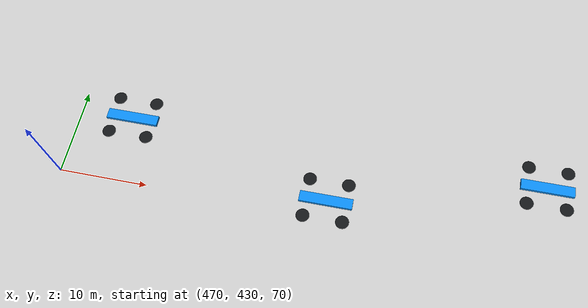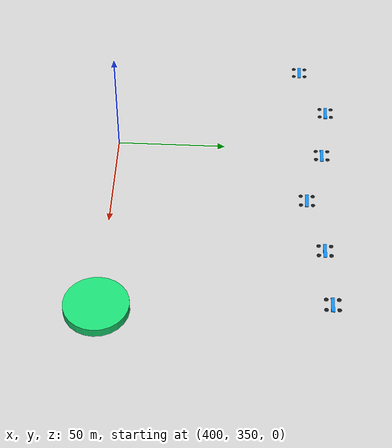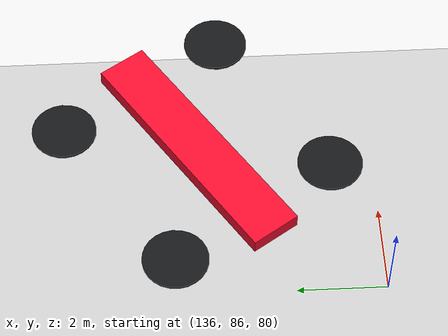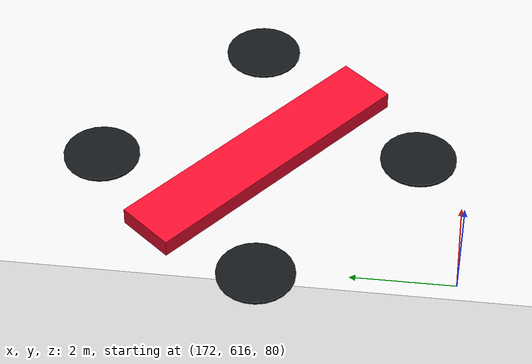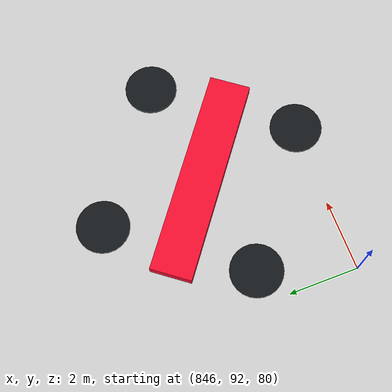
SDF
<?xml version="1.0" ?>
<sdf version="1.6">
  <world name="aegis_baseline">
    <gravity>0 0 -9.8</gravity>
    <magnetic_field>6e-06 2.3e-05 -4.2e-05</magnetic_field>
    <include>
      <uri>model://sun</uri>
    </include>
    <include>
      <uri>model://ground_plane</uri>
    </include>
    <scene>
      <ambient>0.38 0.42 0.46 1</ambient>
      <background>0.025 0.032 0.04 1</background>
      <shadows>true</shadows>
    </scene>
    <model name="asset-alpha">
      <pose>500.0 350.0 0 0 0 0</pose>
      <static>true</static>
      <link name="base_link">
        <visual name="protected_asset">
          <geometry>
            <cylinder>
              <radius>14</radius>
              <length>8</length>
            </cylinder>
          </geometry>
          <material>
            <ambient>0.1 0.85 0.45 1</ambient>
            <diffuse>0.1 0.85 0.45 1</diffuse>
          </material>
        </visual>
      </link>
    </model>
    <model name="F1">
      <pose>428.0 430.0 70.0 0 0 0.0</pose>
      <static>false</static>
      <link name="base_link">
        <gravity>false</gravity>
        <visual name="body">
          <pose>0 0 0 0 0 0</pose>
          <geometry>
            <box>
              <size>6 1.2 0.35</size>
            </box>
          </geometry>
          <material>
            <ambient>0.04 0.55 0.95 1</ambient>
            <diffuse>0.04 0.55 0.95 1</diffuse>
          </material>
        </visual>
        <visual name="rotor_1">
          <pose>2.2 2.2 0 0 0 0</pose>
          <geometry>
            <cylinder>
              <radius>0.75</radius>
              <length>0.06</length>
            </cylinder>
          </geometry>
          <material>
            <ambient>0.08 0.09 0.1 1</ambient>
            <diffuse>0.08 0.09 0.1 1</diffuse>
          </material>
        </visual>
        <visual name="rotor_2">
          <pose>2.2 -2.2 0 0 0 0</pose>
          <geometry>
            <cylinder>
              <radius>0.75</radius>
              <length>0.06</length>
            </cylinder>
          </geometry>
          <material>
            <ambient>0.08 0.09 0.1 1</ambient>
            <diffuse>0.08 0.09 0.1 1</diffuse>
          </material>
        </visual>
        <visual name="rotor_3">
          <pose>-2.2 2.2 0 0 0 0</pose>
          <geometry>
            <cylinder>
              <radius>0.75</radius>
              <length>0.06</length>
            </cylinder>
          </geometry>
          <material>
            <ambient>0.08 0.09 0.1 1</ambient>
            <diffuse>0.08 0.09 0.1 1</diffuse>
          </material>
        </visual>
        <visual name="rotor_4">
          <pose>-2.2 -2.2 0 0 0 0</pose>
          <geometry>
            <cylinder>
              <radius>0.75</radius>
              <length>0.06</length>
            </cylinder>
          </geometry>
          <material>
            <ambient>0.08 0.09 0.1 1</ambient>
            <diffuse>0.08 0.09 0.1 1</diffuse>
          </material>
        </visual>
      </link>
    </model>
    <model name="F2">
      <pose>452.0 440.0 70.0 0 0 0.0</pose>
      <static>false</static>
      <link name="base_link">
        <gravity>false</gravity>
        <visual name="body">
          <pose>0 0 0 0 0 0</pose>
          <geometry>
            <box>
              <size>6 1.2 0.35</size>
            </box>
          </geometry>
          <material>
            <ambient>0.04 0.55 0.95 1</ambient>
            <diffuse>0.04 0.55 0.95 1</diffuse>
          </material>
        </visual>
        <visual name="rotor_1">
          <pose>2.2 2.2 0 0 0 0</pose>
          <geometry>
            <cylinder>
              <radius>0.75</radius>
              <length>0.06</length>
            </cylinder>
          </geometry>
          <material>
            <ambient>0.08 0.09 0.1 1</ambient>
            <diffuse>0.08 0.09 0.1 1</diffuse>
          </material>
        </visual>
        <visual name="rotor_2">
          <pose>2.2 -2.2 0 0 0 0</pose>
          <geometry>
            <cylinder>
              <radius>0.75</radius>
              <length>0.06</length>
            </cylinder>
          </geometry>
          <material>
            <ambient>0.08 0.09 0.1 1</ambient>
            <diffuse>0.08 0.09 0.1 1</diffuse>
          </material>
        </visual>
        <visual name="rotor_3">
          <pose>-2.2 2.2 0 0 0 0</pose>
          <geometry>
            <cylinder>
              <radius>0.75</radius>
              <length>0.06</length>
            </cylinder>
          </geometry>
          <material>
            <ambient>0.08 0.09 0.1 1</ambient>
            <diffuse>0.08 0.09 0.1 1</diffuse>
          </material>
        </visual>
        <visual name="rotor_4">
          <pose>-2.2 -2.2 0 0 0 0</pose>
          <geometry>
            <cylinder>
              <radius>0.75</radius>
              <length>0.06</length>
            </cylinder>
          </geometry>
          <material>
            <ambient>0.08 0.09 0.1 1</ambient>
            <diffuse>0.08 0.09 0.1 1</diffuse>
          </material>
        </visual>
      </link>
    </model>
    <model name="F3">
      <pose>476.0 438.0 70.0 0 0 0.0</pose>
      <static>false</static>
      <link name="base_link">
        <gravity>false</gravity>
        <visual name="body">
          <pose>0 0 0 0 0 0</pose>
          <geometry>
            <box>
              <size>6 1.2 0.35</size>
            </box>
          </geometry>
          <material>
            <ambient>0.04 0.55 0.95 1</ambient>
            <diffuse>0.04 0.55 0.95 1</diffuse>
          </material>
        </visual>
        <visual name="rotor_1">
          <pose>2.2 2.2 0 0 0 0</pose>
          <geometry>
            <cylinder>
              <radius>0.75</radius>
              <length>0.06</length>
            </cylinder>
          </geometry>
          <material>
            <ambient>0.08 0.09 0.1 1</ambient>
            <diffuse>0.08 0.09 0.1 1</diffuse>
          </material>
        </visual>
        <visual name="rotor_2">
          <pose>2.2 -2.2 0 0 0 0</pose>
          <geometry>
            <cylinder>
              <radius>0.75</radius>
              <length>0.06</length>
            </cylinder>
          </geometry>
          <material>
            <ambient>0.08 0.09 0.1 1</ambient>
            <diffuse>0.08 0.09 0.1 1</diffuse>
          </material>
        </visual>
        <visual name="rotor_3">
          <pose>-2.2 2.2 0 0 0 0</pose>
          <geometry>
            <cylinder>
              <radius>0.75</radius>
              <length>0.06</length>
            </cylinder>
          </geometry>
          <material>
            <ambient>0.08 0.09 0.1 1</ambient>
            <diffuse>0.08 0.09 0.1 1</diffuse>
          </material>
        </visual>
        <visual name="rotor_4">
          <pose>-2.2 -2.2 0 0 0 0</pose>
          <geometry>
            <cylinder>
              <radius>0.75</radius>
              <length>0.06</length>
            </cylinder>
          </geometry>
          <material>
            <ambient>0.08 0.09 0.1 1</ambient>
            <diffuse>0.08 0.09 0.1 1</diffuse>
          </material>
        </visual>
      </link>
    </model>
    <model name="F4">
      <pose>500.0 432.0 70.0 0 0 0.0</pose>
      <static>false</static>
      <link name="base_link">
        <gravity>false</gravity>
        <visual name="body">
          <pose>0 0 0 0 0 0</pose>
          <geometry>
            <box>
              <size>6 1.2 0.35</size>
            </box>
          </geometry>
          <material>
            <ambient>0.04 0.55 0.95 1</ambient>
            <diffuse>0.04 0.55 0.95 1</diffuse>
          </material>
        </visual>
        <visual name="rotor_1">
          <pose>2.2 2.2 0 0 0 0</pose>
          <geometry>
            <cylinder>
              <radius>0.75</radius>
              <length>0.06</length>
            </cylinder>
          </geometry>
          <material>
            <ambient>0.08 0.09 0.1 1</ambient>
            <diffuse>0.08 0.09 0.1 1</diffuse>
          </material>
        </visual>
        <visual name="rotor_2">
          <pose>2.2 -2.2 0 0 0 0</pose>
          <geometry>
            <cylinder>
              <radius>0.75</radius>
              <length>0.06</length>
            </cylinder>
          </geometry>
          <material>
            <ambient>0.08 0.09 0.1 1</ambient>
            <diffuse>0.08 0.09 0.1 1</diffuse>
          </material>
        </visual>
        <visual name="rotor_3">
          <pose>-2.2 2.2 0 0 0 0</pose>
          <geometry>
            <cylinder>
              <radius>0.75</radius>
              <length>0.06</length>
            </cylinder>
          </geometry>
          <material>
            <ambient>0.08 0.09 0.1 1</ambient>
            <diffuse>0.08 0.09 0.1 1</diffuse>
          </material>
        </visual>
        <visual name="rotor_4">
          <pose>-2.2 -2.2 0 0 0 0</pose>
          <geometry>
            <cylinder>
              <radius>0.75</radius>
              <length>0.06</length>
            </cylinder>
          </geometry>
          <material>
            <ambient>0.08 0.09 0.1 1</ambient>
            <diffuse>0.08 0.09 0.1 1</diffuse>
          </material>
        </visual>
      </link>
    </model>
    <model name="F5">
      <pose>524.0 438.0 70.0 0 0 0.0</pose>
      <static>false</static>
      <link name="base_link">
        <gravity>false</gravity>
        <visual name="body">
          <pose>0 0 0 0 0 0</pose>
          <geometry>
            <box>
              <size>6 1.2 0.35</size>
            </box>
          </geometry>
          <material>
            <ambient>0.04 0.55 0.95 1</ambient>
            <diffuse>0.04 0.55 0.95 1</diffuse>
          </material>
        </visual>
        <visual name="rotor_1">
          <pose>2.2 2.2 0 0 0 0</pose>
          <geometry>
            <cylinder>
              <radius>0.75</radius>
              <length>0.06</length>
            </cylinder>
          </geometry>
          <material>
            <ambient>0.08 0.09 0.1 1</ambient>
            <diffuse>0.08 0.09 0.1 1</diffuse>
          </material>
        </visual>
        <visual name="rotor_2">
          <pose>2.2 -2.2 0 0 0 0</pose>
          <geometry>
            <cylinder>
              <radius>0.75</radius>
              <length>0.06</length>
            </cylinder>
          </geometry>
          <material>
            <ambient>0.08 0.09 0.1 1</ambient>
            <diffuse>0.08 0.09 0.1 1</diffuse>
          </material>
        </visual>
        <visual name="rotor_3">
          <pose>-2.2 2.2 0 0 0 0</pose>
          <geometry>
            <cylinder>
              <radius>0.75</radius>
              <length>0.06</length>
            </cylinder>
          </geometry>
          <material>
            <ambient>0.08 0.09 0.1 1</ambient>
            <diffuse>0.08 0.09 0.1 1</diffuse>
          </material>
        </visual>
        <visual name="rotor_4">
          <pose>-2.2 -2.2 0 0 0 0</pose>
          <geometry>
            <cylinder>
              <radius>0.75</radius>
              <length>0.06</length>
            </cylinder>
          </geometry>
          <material>
            <ambient>0.08 0.09 0.1 1</ambient>
            <diffuse>0.08 0.09 0.1 1</diffuse>
          </material>
        </visual>
      </link>
    </model>
    <model name="F6">
      <pose>548.0 440.0 70.0 0 0 0.0</pose>
      <static>false</static>
      <link name="base_link">
        <gravity>false</gravity>
        <visual name="body">
          <pose>0 0 0 0 0 0</pose>
          <geometry>
            <box>
              <size>6 1.2 0.35</size>
            </box>
          </geometry>
          <material>
            <ambient>0.04 0.55 0.95 1</ambient>
            <diffuse>0.04 0.55 0.95 1</diffuse>
          </material>
        </visual>
        <visual name="rotor_1">
          <pose>2.2 2.2 0 0 0 0</pose>
          <geometry>
            <cylinder>
              <radius>0.75</radius>
              <length>0.06</length>
            </cylinder>
          </geometry>
          <material>
            <ambient>0.08 0.09 0.1 1</ambient>
            <diffuse>0.08 0.09 0.1 1</diffuse>
          </material>
        </visual>
        <visual name="rotor_2">
          <pose>2.2 -2.2 0 0 0 0</pose>
          <geometry>
            <cylinder>
              <radius>0.75</radius>
              <length>0.06</length>
            </cylinder>
          </geometry>
          <material>
            <ambient>0.08 0.09 0.1 1</ambient>
            <diffuse>0.08 0.09 0.1 1</diffuse>
          </material>
        </visual>
        <visual name="rotor_3">
          <pose>-2.2 2.2 0 0 0 0</pose>
          <geometry>
            <cylinder>
              <radius>0.75</radius>
              <length>0.06</length>
            </cylinder>
          </geometry>
          <material>
            <ambient>0.08 0.09 0.1 1</ambient>
            <diffuse>0.08 0.09 0.1 1</diffuse>
          </material>
        </visual>
        <visual name="rotor_4">
          <pose>-2.2 -2.2 0 0 0 0</pose>
          <geometry>
            <cylinder>
              <radius>0.75</radius>
              <length>0.06</length>
            </cylinder>
          </geometry>
          <material>
            <ambient>0.08 0.09 0.1 1</ambient>
            <diffuse>0.08 0.09 0.1 1</diffuse>
          </material>
        </visual>
      </link>
    </model>
    <model name="H1">
      <pose>140.0 90.0 80.0 0 0 0.5880026035475675</pose>
      <static>false</static>
      <link name="base_link">
        <gravity>false</gravity>
        <visual name="body">
          <pose>0 0 0 0 0 0</pose>
          <geometry>
            <box>
              <size>6 1.2 0.35</size>
            </box>
          </geometry>
          <material>
            <ambient>0.95 0.05 0.18 1</ambient>
            <diffuse>0.95 0.05 0.18 1</diffuse>
          </material>
        </visual>
        <visual name="rotor_1">
          <pose>2.2 2.2 0 0 0 0</pose>
          <geometry>
            <cylinder>
              <radius>0.75</radius>
              <length>0.06</length>
            </cylinder>
          </geometry>
          <material>
            <ambient>0.08 0.09 0.1 1</ambient>
            <diffuse>0.08 0.09 0.1 1</diffuse>
          </material>
        </visual>
        <visual name="rotor_2">
          <pose>2.2 -2.2 0 0 0 0</pose>
          <geometry>
            <cylinder>
              <radius>0.75</radius>
              <length>0.06</length>
            </cylinder>
          </geometry>
          <material>
            <ambient>0.08 0.09 0.1 1</ambient>
            <diffuse>0.08 0.09 0.1 1</diffuse>
          </material>
        </visual>
        <visual name="rotor_3">
          <pose>-2.2 2.2 0 0 0 0</pose>
          <geometry>
            <cylinder>
              <radius>0.75</radius>
              <length>0.06</length>
            </cylinder>
          </geometry>
          <material>
            <ambient>0.08 0.09 0.1 1</ambient>
            <diffuse>0.08 0.09 0.1 1</diffuse>
          </material>
        </visual>
        <visual name="rotor_4">
          <pose>-2.2 -2.2 0 0 0 0</pose>
          <geometry>
            <cylinder>
              <radius>0.75</radius>
              <length>0.06</length>
            </cylinder>
          </geometry>
          <material>
            <ambient>0.08 0.09 0.1 1</ambient>
            <diffuse>0.08 0.09 0.1 1</diffuse>
          </material>
        </visual>
      </link>
    </model>
    <model name="H2">
      <pose>850.0 95.0 80.0 0 0 2.4917222041778455</pose>
      <static>false</static>
      <link name="base_link">
        <gravity>false</gravity>
        <visual name="body">
          <pose>0 0 0 0 0 0</pose>
          <geometry>
            <box>
              <size>6 1.2 0.35</size>
            </box>
          </geometry>
          <material>
            <ambient>0.95 0.05 0.18 1</ambient>
            <diffuse>0.95 0.05 0.18 1</diffuse>
          </material>
        </visual>
        <visual name="rotor_1">
          <pose>2.2 2.2 0 0 0 0</pose>
          <geometry>
            <cylinder>
              <radius>0.75</radius>
              <length>0.06</length>
            </cylinder>
          </geometry>
          <material>
            <ambient>0.08 0.09 0.1 1</ambient>
            <diffuse>0.08 0.09 0.1 1</diffuse>
          </material>
        </visual>
        <visual name="rotor_2">
          <pose>2.2 -2.2 0 0 0 0</pose>
          <geometry>
            <cylinder>
              <radius>0.75</radius>
              <length>0.06</length>
            </cylinder>
          </geometry>
          <material>
            <ambient>0.08 0.09 0.1 1</ambient>
            <diffuse>0.08 0.09 0.1 1</diffuse>
          </material>
        </visual>
        <visual name="rotor_3">
          <pose>-2.2 2.2 0 0 0 0</pose>
          <geometry>
            <cylinder>
              <radius>0.75</radius>
              <length>0.06</length>
            </cylinder>
          </geometry>
          <material>
            <ambient>0.08 0.09 0.1 1</ambient>
            <diffuse>0.08 0.09 0.1 1</diffuse>
          </material>
        </visual>
        <visual name="rotor_4">
          <pose>-2.2 -2.2 0 0 0 0</pose>
          <geometry>
            <cylinder>
              <radius>0.75</radius>
              <length>0.06</length>
            </cylinder>
          </geometry>
          <material>
            <ambient>0.08 0.09 0.1 1</ambient>
            <diffuse>0.08 0.09 0.1 1</diffuse>
          </material>
        </visual>
      </link>
    </model>
    <model name="H3">
      <pose>920.0 520.0 95.0 0 0 -2.7557099841917196</pose>
      <static>false</static>
      <link name="base_link">
        <gravity>false</gravity>
        <visual name="body">
          <pose>0 0 0 0 0 0</pose>
          <geometry>
            <box>
              <size>6 1.2 0.35</size>
            </box>
          </geometry>
          <material>
            <ambient>1.0 0.55 0.05 1</ambient>
            <diffuse>1.0 0.55 0.05 1</diffuse>
          </material>
        </visual>
        <visual name="rotor_1">
          <pose>2.2 2.2 0 0 0 0</pose>
          <geometry>
            <cylinder>
              <radius>0.75</radius>
              <length>0.06</length>
            </cylinder>
          </geometry>
          <material>
            <ambient>0.08 0.09 0.1 1</ambient>
            <diffuse>0.08 0.09 0.1 1</diffuse>
          </material>
        </visual>
        <visual name="rotor_2">
          <pose>2.2 -2.2 0 0 0 0</pose>
          <geometry>
            <cylinder>
              <radius>0.75</radius>
              <length>0.06</length>
            </cylinder>
          </geometry>
          <material>
            <ambient>0.08 0.09 0.1 1</ambient>
            <diffuse>0.08 0.09 0.1 1</diffuse>
          </material>
        </visual>
        <visual name="rotor_3">
          <pose>-2.2 2.2 0 0 0 0</pose>
          <geometry>
            <cylinder>
              <radius>0.75</radius>
              <length>0.06</length>
            </cylinder>
          </geometry>
          <material>
            <ambient>0.08 0.09 0.1 1</ambient>
            <diffuse>0.08 0.09 0.1 1</diffuse>
          </material>
        </visual>
        <visual name="rotor_4">
          <pose>-2.2 -2.2 0 0 0 0</pose>
          <geometry>
            <cylinder>
              <radius>0.75</radius>
              <length>0.06</length>
            </cylinder>
          </geometry>
          <material>
            <ambient>0.08 0.09 0.1 1</ambient>
            <diffuse>0.08 0.09 0.1 1</diffuse>
          </material>
        </visual>
      </link>
    </model>
    <model name="H4">
      <pose>175.0 620.0 80.0 0 0 -0.6947382761967031</pose>
      <static>false</static>
      <link name="base_link">
        <gravity>false</gravity>
        <visual name="body">
          <pose>0 0 0 0 0 0</pose>
          <geometry>
            <box>
              <size>6 1.2 0.35</size>
            </box>
          </geometry>
          <material>
            <ambient>0.95 0.05 0.18 1</ambient>
            <diffuse>0.95 0.05 0.18 1</diffuse>
          </material>
        </visual>
        <visual name="rotor_1">
          <pose>2.2 2.2 0 0 0 0</pose>
          <geometry>
            <cylinder>
              <radius>0.75</radius>
              <length>0.06</length>
            </cylinder>
          </geometry>
          <material>
            <ambient>0.08 0.09 0.1 1</ambient>
            <diffuse>0.08 0.09 0.1 1</diffuse>
          </material>
        </visual>
        <visual name="rotor_2">
          <pose>2.2 -2.2 0 0 0 0</pose>
          <geometry>
            <cylinder>
              <radius>0.75</radius>
              <length>0.06</length>
            </cylinder>
          </geometry>
          <material>
            <ambient>0.08 0.09 0.1 1</ambient>
            <diffuse>0.08 0.09 0.1 1</diffuse>
          </material>
        </visual>
        <visual name="rotor_3">
          <pose>-2.2 2.2 0 0 0 0</pose>
          <geometry>
            <cylinder>
              <radius>0.75</radius>
              <length>0.06</length>
            </cylinder>
          </geometry>
          <material>
            <ambient>0.08 0.09 0.1 1</ambient>
            <diffuse>0.08 0.09 0.1 1</diffuse>
          </material>
        </visual>
        <visual name="rotor_4">
          <pose>-2.2 -2.2 0 0 0 0</pose>
          <geometry>
            <cylinder>
              <radius>0.75</radius>
              <length>0.06</length>
            </cylinder>
          </geometry>
          <material>
            <ambient>0.08 0.09 0.1 1</ambient>
            <diffuse>0.08 0.09 0.1 1</diffuse>
          </material>
        </visual>
      </link>
    </model>
  </world>
</sdf>
